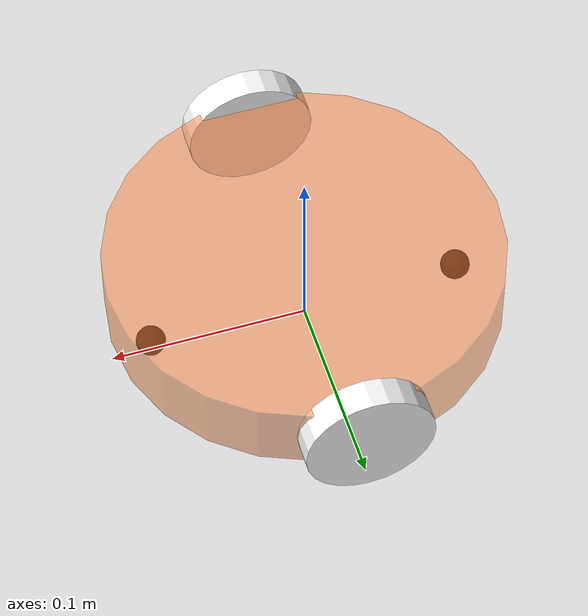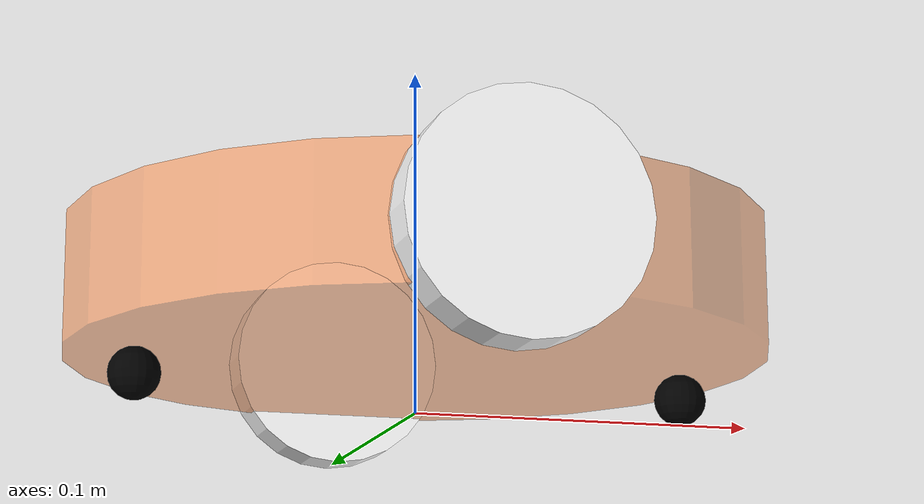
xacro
<robot name="amy" xmlns:xacro="http://wiki.ros.org/xacro">
    <xacro:property name="footprint_r" value="0.001" />
    <link name="base_footprint">
        <visual>
            <geometry>
                <box size="${footprint_r} ${footprint_r} ${footprint_r}" />
            </geometry>
        </visual>
    </link>

    <xacro:property name="base_radius" value="0.1" />
    <xacro:property name="base_length" value="0.0375" />
    <xacro:property name="base_mass" value="2" />
    <xacro:property name="lidi" value="0.015" />
    <xacro:property name="base_joint_z" value="${base_length/2+lidi}" />
    <link name="base_link">
        <visual>
            <geometry>
                <cylinder radius="${base_radius}" length="${base_length}" />
            </geometry>
            <origin xyz="0 0 0" rpy="0 0 0" />
            <material name="base_link_color">
                <color rgba="1.0 0.5 0.2 0.5" />
            </material>
        </visual>
        <collision>
            <geometry>
                <cylinder radius="${base_radius}" length="${base_length}" />
            </geometry>
            <origin xyz="0 0 0" rpy="0 0 0" />
        </collision>
        <xacro:cylinder_inertial_matrix m="${base_mass}" r="${base_radius}" h="${base_length}"/>
    </link>
    <gazebo reference="base_link">
        <material>Gazebo/Yellow</material>
    </gazebo>
    <joint name="link2footprint" type="fixed">
        <parent link="base_footprint"/>
        <child link="base_link"/>
        <origin xyz="0 0 ${base_joint_z}" rpy="0 0 0"/>
    </joint>

    <xacro:property name="wheel_radius" value="0.0325" />
    <xacro:property name="wheel_length" value="0.015" />
    <xacro:property name="wheel_mass" value="0.05" />
    <xacro:property name="wheel_joint_z" value="${-base_length/2-lidi+wheel_radius}" />
    <xacro:macro name="wheel_func" params="wheel_name flag">
        <link name="${wheel_name}_wheel">
            <visual>
                <geometry>
                    <cylinder radius="${wheel_radius}" length="${wheel_length}" />
                </geometry>
                <origin xyz="0 0 0" rpy="${pi/2} 0 0" />
                <material name="wheel_color">
                    <color rgba="1 1 1 1" />
                </material>
            </visual>
            <collision>
                <geometry>
                    <cylinder radius="${wheel_radius}" length="${wheel_length}" />
                </geometry>
                <origin xyz="0 0 0" rpy="${pi/2} 0 0" />
            </collision>
            <xacro:cylinder_inertial_matrix m="${wheel_mass}" r="${wheel_radius}" h="${wheel_length}" />
        </link>
        <gazebo reference = "${wheel_name}_wheel" >
            <material>Gazebo/White</material>
        </gazebo>
        <joint name="${wheel_name}2link" type="continuous">
            <parent link="base_link"/>
            <child link="${wheel_name}_wheel"/>
            <origin xyz="0 ${0.1*flag} ${wheel_joint_z}" rpy="0 0 0"/>
            <axis xyz="0 1 0" />
        </joint>
    </xacro:macro>
    <xacro:wheel_func wheel_name="left" flag="1" />
    <xacro:wheel_func wheel_name="right" flag="-1" />

    <xacro:property name="small_wheel_r" value="0.0075" />
    <xacro:property name="small_wheel_mass" value="0.01" />
    <xacro:property name="small_joint_z" value="${(base_length/2+lidi-small_wheel_r)*-1}" />
    <xacro:macro name="small_wheel_func" params="small_w flag" >
        <link name="${small_w}_wheel">
            <visual>
                <geometry>
                    <sphere radius="${small_wheel_r}" />
                </geometry>
                <origin xyz="0 0 0" rpy="0 0 0" />
                <material name="wheel_color">
                    <color rgba="0 0 0 1" />
                </material>
            </visual>
            <collision>
                <geometry>
                    <sphere radius="${small_wheel_r}" />
                </geometry>
                <origin xyz="0 0 0" rpy="0 0 0" />
            </collision>
            <xacro:sphere_inertial_matrix m="${small_wheel_mass}" r="${small_wheel_r}" />
        </link>
        <gazebo reference = "${small_w}_wheel" >
            <material>Gazebo/Red</material>
        </gazebo>
        <joint name="${small_w}2link" type="continuous">
            <parent link="base_link"/>
            <child link="${small_w}_wheel"/>
            <origin xyz="${0.08*flag} 0 ${small_joint_z}" rpy="0 0 0"/>
            <axis xyz="1 1 1" />
        </joint>
    </xacro:macro>
    <xacro:small_wheel_func small_w="front" flag="1" />
    <xacro:small_wheel_func small_w="back" flag="-1" />
</robot>
